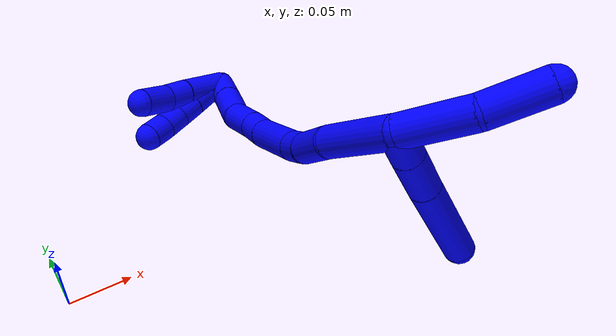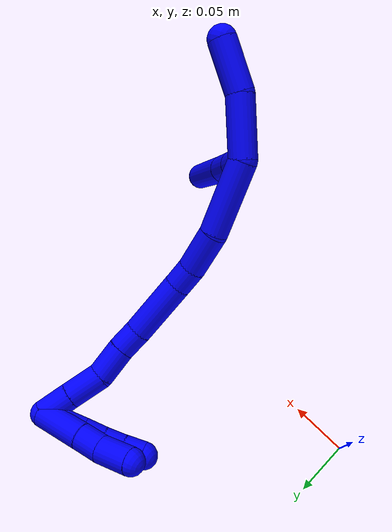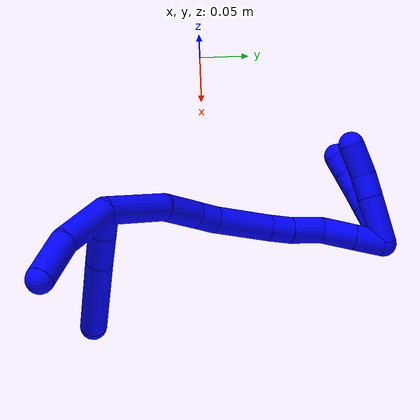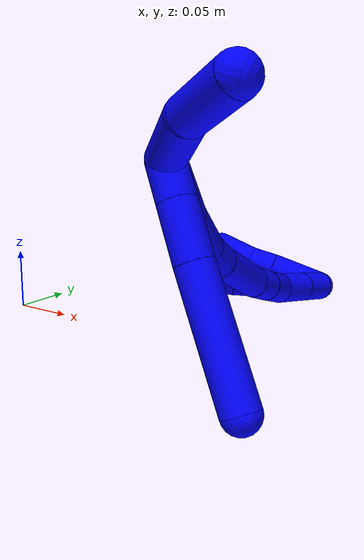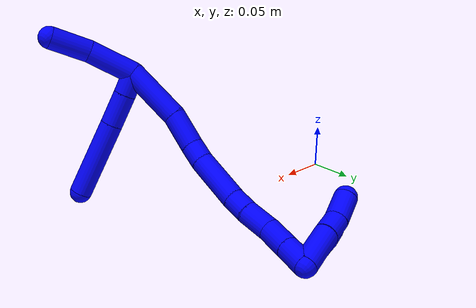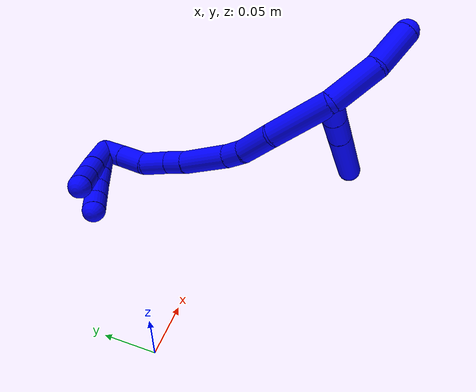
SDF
<sdf version="1.7">
 <world name="default">
  <model name="1">
   <static>0</static>
   <link name="1">
    <collision name="collision-cylinder-e_1_2_8">
     <pose>0.009461 0.002998 0.007987 -0.359085 0.837057 -0.161114</pose>
     <geometry><cylinder><radius>0.0125</radius><length>0.025479</length></cylinder></geometry>
     <surface>
      <friction><ode><mu>1.16</mu><mu2>1.16</mu2><slip1>0</slip1><slip2>0</slip2></ode></friction>
      <contact><ode><kp>1e+06</kp><kd>1</kd><max_vel>0</max_vel><min_depth>0.001</min_depth></ode></contact>
     </surface>
    </collision>
    <visual name="visual-cylinder-e_1_2_8">
     <pose>0.009461 0.002998 0.007987 -0.359085 0.837057 -0.161114</pose>
     <geometry><cylinder><radius>0.0125</radius><length>0.025479</length></cylinder></geometry>
     <material><ambient>0 0 1 1</ambient></material>
    </visual>
    <collision name="collision-cylinder-e_2_8_9">
     <pose>0.032858 0.009986 0.027812 -0.325083 0.839936 -0.146192</pose>
     <geometry><cylinder><radius>0.0125</radius><length>0.037432</length></cylinder></geometry>
     <surface>
      <friction><ode><mu>1.16</mu><mu2>1.16</mu2><slip1>0</slip1><slip2>0</slip2></ode></friction>
      <contact><ode><kp>1e+06</kp><kd>1</kd><max_vel>0</max_vel><min_depth>0.001</min_depth></ode></contact>
     </surface>
    </collision>
    <visual name="visual-cylinder-e_2_8_9">
     <pose>0.032858 0.009986 0.027812 -0.325083 0.839936 -0.146192</pose>
     <geometry><cylinder><radius>0.0125</radius><length>0.037432</length></cylinder></geometry>
     <material><ambient>0 0 1 1</ambient></material>
    </visual>
    <collision name="collision-cylinder-e_3_9_6">
     <pose>0.07847 0.023172 0.06808 -0.312829 0.814579 -0.13586</pose>
     <geometry><cylinder><radius>0.0125</radius><length>0.087089</length></cylinder></geometry>
     <surface>
      <friction><ode><mu>1.16</mu><mu2>1.16</mu2><slip1>0</slip1><slip2>0</slip2></ode></friction>
      <contact><ode><kp>1e+06</kp><kd>1</kd><max_vel>0</max_vel><min_depth>0.001</min_depth></ode></contact>
     </surface>
    </collision>
    <visual name="visual-cylinder-e_3_9_6">
     <pose>0.07847 0.023172 0.06808 -0.312829 0.814579 -0.13586</pose>
     <geometry><cylinder><radius>0.0125</radius><length>0.087089</length></cylinder></geometry>
     <material><ambient>0 0 1 1</ambient></material>
    </visual>
    <collision name="collision-cylinder-e_1_2_10">
     <pose>-0.002473 -0.025199 0.009447 1.21212 -0.091633 -0.063531</pose>
     <geometry><cylinder><radius>0.0125</radius><length>0.05405</length></cylinder></geometry>
     <surface>
      <friction><ode><mu>1.16</mu><mu2>1.16</mu2><slip1>0</slip1><slip2>0</slip2></ode></friction>
      <contact><ode><kp>1e+06</kp><kd>1</kd><max_vel>0</max_vel><min_depth>0.001</min_depth></ode></contact>
     </surface>
    </collision>
    <visual name="visual-cylinder-e_1_2_10">
     <pose>-0.002473 -0.025199 0.009447 1.21212 -0.091633 -0.063531</pose>
     <geometry><cylinder><radius>0.0125</radius><length>0.05405</length></cylinder></geometry>
     <material><ambient>0 0 1 1</ambient></material>
    </visual>
    <collision name="collision-cylinder-e_2_10_5">
     <pose>-0.009434 -0.068726 0.032 0.950011 -0.196637 -0.101366</pose>
     <geometry><cylinder><radius>0.0125</radius><length>0.04595</length></cylinder></geometry>
     <surface>
      <friction><ode><mu>1.16</mu><mu2>1.16</mu2><slip1>0</slip1><slip2>0</slip2></ode></friction>
      <contact><ode><kp>1e+06</kp><kd>1</kd><max_vel>0</max_vel><min_depth>0.001</min_depth></ode></contact>
     </surface>
    </collision>
    <visual name="visual-cylinder-e_2_10_5">
     <pose>-0.009434 -0.068726 0.032 0.950011 -0.196637 -0.101366</pose>
     <geometry><cylinder><radius>0.0125</radius><length>0.04595</length></cylinder></geometry>
     <material><ambient>0 0 1 1</ambient></material>
    </visual>
    <collision name="collision-cylinder-e_1_2_11">
     <pose>0.001984 0.033152 0.003592 -1.46287 0.059428 -0.05334</pose>
     <geometry><cylinder><radius>0.0125</radius><length>0.066809</length></cylinder></geometry>
     <surface>
      <friction><ode><mu>1.16</mu><mu2>1.16</mu2><slip1>0</slip1><slip2>0</slip2></ode></friction>
      <contact><ode><kp>1e+06</kp><kd>1</kd><max_vel>0</max_vel><min_depth>0.001</min_depth></ode></contact>
     </surface>
    </collision>
    <visual name="visual-cylinder-e_1_2_11">
     <pose>0.001984 0.033152 0.003592 -1.46287 0.059428 -0.05334</pose>
     <geometry><cylinder><radius>0.0125</radius><length>0.066809</length></cylinder></geometry>
     <material><ambient>0 0 1 1</ambient></material>
    </visual>
    <collision name="collision-cylinder-e_2_11_12">
     <pose>0.006605 0.084733 0.013474 -1.24188 0.134587 -0.096345</pose>
     <geometry><cylinder><radius>0.0125</radius><length>0.039302</length></cylinder></geometry>
     <surface>
      <friction><ode><mu>1.16</mu><mu2>1.16</mu2><slip1>0</slip1><slip2>0</slip2></ode></friction>
      <contact><ode><kp>1e+06</kp><kd>1</kd><max_vel>0</max_vel><min_depth>0.001</min_depth></ode></contact>
     </surface>
    </collision>
    <visual name="visual-cylinder-e_2_11_12">
     <pose>0.006605 0.084733 0.013474 -1.24188 0.134587 -0.096345</pose>
     <geometry><cylinder><radius>0.0125</radius><length>0.039302</length></cylinder></geometry>
     <material><ambient>0 0 1 1</ambient></material>
    </visual>
    <collision name="collision-cylinder-e_3_12_13">
     <pose>0.008797 0.113216 0.023932 -1.17778 -0.040847 0.027286</pose>
     <geometry><cylinder><radius>0.0125</radius><length>0.021787</length></cylinder></geometry>
     <surface>
      <friction><ode><mu>1.16</mu><mu2>1.16</mu2><slip1>0</slip1><slip2>0</slip2></ode></friction>
      <contact><ode><kp>1e+06</kp><kd>1</kd><max_vel>0</max_vel><min_depth>0.001</min_depth></ode></contact>
     </surface>
    </collision>
    <visual name="visual-cylinder-e_3_12_13">
     <pose>0.008797 0.113216 0.023932 -1.17778 -0.040847 0.027286</pose>
     <geometry><cylinder><radius>0.0125</radius><length>0.021787</length></cylinder></geometry>
     <material><ambient>0 0 1 1</ambient></material>
    </visual>
    <collision name="collision-cylinder-e_4_13_14">
     <pose>0.003241 0.149353 0.037588 -1.22193 -0.182093 0.127709</pose>
     <geometry><cylinder><radius>0.0125</radius><length>0.056441</length></cylinder></geometry>
     <surface>
      <friction><ode><mu>1.16</mu><mu2>1.16</mu2><slip1>0</slip1><slip2>0</slip2></ode></friction>
      <contact><ode><kp>1e+06</kp><kd>1</kd><max_vel>0</max_vel><min_depth>0.001</min_depth></ode></contact>
     </surface>
    </collision>
    <visual name="visual-cylinder-e_4_13_14">
     <pose>0.003241 0.149353 0.037588 -1.22193 -0.182093 0.127709</pose>
     <geometry><cylinder><radius>0.0125</radius><length>0.056441</length></cylinder></geometry>
     <material><ambient>0 0 1 1</ambient></material>
    </visual>
    <collision name="collision-cylinder-e_5_14_15">
     <pose>-0.005418 0.185505 0.050753 -1.22069 -0.319719 0.224597</pose>
     <geometry><cylinder><radius>0.0125</radius><length>0.022585</length></cylinder></geometry>
     <surface>
      <friction><ode><mu>1.16</mu><mu2>1.16</mu2><slip1>0</slip1><slip2>0</slip2></ode></friction>
      <contact><ode><kp>1e+06</kp><kd>1</kd><max_vel>0</max_vel><min_depth>0.001</min_depth></ode></contact>
     </surface>
    </collision>
    <visual name="visual-cylinder-e_5_14_15">
     <pose>-0.005418 0.185505 0.050753 -1.22069 -0.319719 0.224597</pose>
     <geometry><cylinder><radius>0.0125</radius><length>0.022585</length></cylinder></geometry>
     <material><ambient>0 0 1 1</ambient></material>
    </visual>
    <collision name="collision-cylinder-e_6_15_16">
     <pose>-0.014057 0.209987 0.057787 -1.34193 -0.331247 0.263842</pose>
     <geometry><cylinder><radius>0.0125</radius><length>0.031296</length></cylinder></geometry>
     <surface>
      <friction><ode><mu>1.16</mu><mu2>1.16</mu2><slip1>0</slip1><slip2>0</slip2></ode></friction>
      <contact><ode><kp>1e+06</kp><kd>1</kd><max_vel>0</max_vel><min_depth>0.001</min_depth></ode></contact>
     </surface>
    </collision>
    <visual name="visual-cylinder-e_6_15_16">
     <pose>-0.014057 0.209987 0.057787 -1.34193 -0.331247 0.263842</pose>
     <geometry><cylinder><radius>0.0125</radius><length>0.031296</length></cylinder></geometry>
     <material><ambient>0 0 1 1</ambient></material>
    </visual>
    <collision name="collision-cylinder-e_7_16_17">
     <pose>-0.027411 0.236722 0.068458 -1.03515 -0.523144 0.302506</pose>
     <geometry><cylinder><radius>0.0125</radius><length>0.033087</length></cylinder></geometry>
     <surface>
      <friction><ode><mu>1.16</mu><mu2>1.16</mu2><slip1>0</slip1><slip2>0</slip2></ode></friction>
      <contact><ode><kp>1e+06</kp><kd>1</kd><max_vel>0</max_vel><min_depth>0.001</min_depth></ode></contact>
     </surface>
    </collision>
    <visual name="visual-cylinder-e_7_16_17">
     <pose>-0.027411 0.236722 0.068458 -1.03515 -0.523144 0.302506</pose>
     <geometry><cylinder><radius>0.0125</radius><length>0.033087</length></cylinder></geometry>
     <material><ambient>0 0 1 1</ambient></material>
    </visual>
    <collision name="collision-cylinder-e_8_17_1">
     <pose>-0.042773 0.25985 0.081995 -1.04828 -0.517499 0.303658</pose>
     <geometry><cylinder><radius>0.0125</radius><length>0.028693</length></cylinder></geometry>
     <surface>
      <friction><ode><mu>1.16</mu><mu2>1.16</mu2><slip1>0</slip1><slip2>0</slip2></ode></friction>
      <contact><ode><kp>1e+06</kp><kd>1</kd><max_vel>0</max_vel><min_depth>0.001</min_depth></ode></contact>
     </surface>
    </collision>
    <visual name="visual-cylinder-e_8_17_1">
     <pose>-0.042773 0.25985 0.081995 -1.04828 -0.517499 0.303658</pose>
     <geometry><cylinder><radius>0.0125</radius><length>0.028693</length></cylinder></geometry>
     <material><ambient>0 0 1 1</ambient></material>
    </visual>
    <collision name="collision-cylinder-e_1_1_18">
     <pose>-0.049408 0.270123 0.065395 3.11836 0.020259 1.434</pose>
     <geometry><cylinder><radius>0.0125</radius><length>0.045666</length></cylinder></geometry>
     <surface>
      <friction><ode><mu>1.16</mu><mu2>1.16</mu2><slip1>0</slip1><slip2>0</slip2></ode></friction>
      <contact><ode><kp>1e+06</kp><kd>1</kd><max_vel>0</max_vel><min_depth>0.001</min_depth></ode></contact>
     </surface>
    </collision>
    <visual name="visual-cylinder-e_1_1_18">
     <pose>-0.049408 0.270123 0.065395 3.11836 0.020259 1.434</pose>
     <geometry><cylinder><radius>0.0125</radius><length>0.045666</length></cylinder></geometry>
     <material><ambient>0 0 1 1</ambient></material>
    </visual>
    <collision name="collision-cylinder-e_2_18_19">
     <pose>-0.048146 0.269789 0.031224 -3.12429 0.070296 -2.65906</pose>
     <geometry><cylinder><radius>0.0125</radius><length>0.022758</length></cylinder></geometry>
     <surface>
      <friction><ode><mu>1.16</mu><mu2>1.16</mu2><slip1>0</slip1><slip2>0</slip2></ode></friction>
      <contact><ode><kp>1e+06</kp><kd>1</kd><max_vel>0</max_vel><min_depth>0.001</min_depth></ode></contact>
     </surface>
    </collision>
    <visual name="visual-cylinder-e_2_18_19">
     <pose>-0.048146 0.269789 0.031224 -3.12429 0.070296 -2.65906</pose>
     <geometry><cylinder><radius>0.0125</radius><length>0.022758</length></cylinder></geometry>
     <material><ambient>0 0 1 1</ambient></material>
    </visual>
    <collision name="collision-cylinder-e_3_19_4">
     <pose>-0.047459 0.267136 0.004346 2.96008 -0.007106 -0.078049</pose>
     <geometry><cylinder><radius>0.0125</radius><length>0.031576</length></cylinder></geometry>
     <surface>
      <friction><ode><mu>1.16</mu><mu2>1.16</mu2><slip1>0</slip1><slip2>0</slip2></ode></friction>
      <contact><ode><kp>1e+06</kp><kd>1</kd><max_vel>0</max_vel><min_depth>0.001</min_depth></ode></contact>
     </surface>
    </collision>
    <visual name="visual-cylinder-e_3_19_4">
     <pose>-0.047459 0.267136 0.004346 2.96008 -0.007106 -0.078049</pose>
     <geometry><cylinder><radius>0.0125</radius><length>0.031576</length></cylinder></geometry>
     <material><ambient>0 0 1 1</ambient></material>
    </visual>
    <collision name="collision-cylinder-e_1_1_20">
     <pose>-0.047905 0.270444 0.078414 3.12022 0.197852 2.92708</pose>
     <geometry><cylinder><radius>0.0125</radius><length>0.02</length></cylinder></geometry>
     <surface>
      <friction><ode><mu>1.16</mu><mu2>1.16</mu2><slip1>0</slip1><slip2>0</slip2></ode></friction>
      <contact><ode><kp>1e+06</kp><kd>1</kd><max_vel>0</max_vel><min_depth>0.001</min_depth></ode></contact>
     </surface>
    </collision>
    <visual name="visual-cylinder-e_1_1_20">
     <pose>-0.047905 0.270444 0.078414 3.12022 0.197852 2.92708</pose>
     <geometry><cylinder><radius>0.0125</radius><length>0.02</length></cylinder></geometry>
     <material><ambient>0 0 1 1</ambient></material>
    </visual>
    <collision name="collision-cylinder-e_2_20_21">
     <pose>-0.041759 0.271061 0.059565 -3.05053 0.431239 -2.73138</pose>
     <geometry><cylinder><radius>0.0125</radius><length>0.02</length></cylinder></geometry>
     <surface>
      <friction><ode><mu>1.16</mu><mu2>1.16</mu2><slip1>0</slip1><slip2>0</slip2></ode></friction>
      <contact><ode><kp>1e+06</kp><kd>1</kd><max_vel>0</max_vel><min_depth>0.001</min_depth></ode></contact>
     </surface>
    </collision>
    <visual name="visual-cylinder-e_2_20_21">
     <pose>-0.041759 0.271061 0.059565 -3.05053 0.431239 -2.73138</pose>
     <geometry><cylinder><radius>0.0125</radius><length>0.02</length></cylinder></geometry>
     <material><ambient>0 0 1 1</ambient></material>
    </visual>
    <collision name="collision-cylinder-e_3_21_22">
     <pose>-0.033516 0.272831 0.04143 -3.03809 0.418469 -2.66306</pose>
     <geometry><cylinder><radius>0.0125</radius><length>0.02</length></cylinder></geometry>
     <surface>
      <friction><ode><mu>1.16</mu><mu2>1.16</mu2><slip1>0</slip1><slip2>0</slip2></ode></friction>
      <contact><ode><kp>1e+06</kp><kd>1</kd><max_vel>0</max_vel><min_depth>0.001</min_depth></ode></contact>
     </surface>
    </collision>
    <visual name="visual-cylinder-e_3_21_22">
     <pose>-0.033516 0.272831 0.04143 -3.03809 0.418469 -2.66306</pose>
     <geometry><cylinder><radius>0.0125</radius><length>0.02</length></cylinder></geometry>
     <material><ambient>0 0 1 1</ambient></material>
    </visual>
    <collision name="collision-cylinder-e_4_22_23">
     <pose>-0.025686 0.273908 0.023079 -3.12721 0.386149 -3.06804</pose>
     <geometry><cylinder><radius>0.0125</radius><length>0.02</length></cylinder></geometry>
     <surface>
      <friction><ode><mu>1.16</mu><mu2>1.16</mu2><slip1>0</slip1><slip2>0</slip2></ode></friction>
      <contact><ode><kp>1e+06</kp><kd>1</kd><max_vel>0</max_vel><min_depth>0.001</min_depth></ode></contact>
     </surface>
    </collision>
    <visual name="visual-cylinder-e_4_22_23">
     <pose>-0.025686 0.273908 0.023079 -3.12721 0.386149 -3.06804</pose>
     <geometry><cylinder><radius>0.0125</radius><length>0.02</length></cylinder></geometry>
     <material><ambient>0 0 1 1</ambient></material>
    </visual>
    <collision name="collision-cylinder-e_5_23_3">
     <pose>-0.019098 0.273119 0.004267 3.04527 0.28609 2.4957</pose>
     <geometry><cylinder><radius>0.0125</radius><length>0.02</length></cylinder></geometry>
     <surface>
      <friction><ode><mu>1.16</mu><mu2>1.16</mu2><slip1>0</slip1><slip2>0</slip2></ode></friction>
      <contact><ode><kp>1e+06</kp><kd>1</kd><max_vel>0</max_vel><min_depth>0.001</min_depth></ode></contact>
     </surface>
    </collision>
    <visual name="visual-cylinder-e_5_23_3">
     <pose>-0.019098 0.273119 0.004267 3.04527 0.28609 2.4957</pose>
     <geometry><cylinder><radius>0.0125</radius><length>0.02</length></cylinder></geometry>
     <material><ambient>0 0 1 1</ambient></material>
    </visual>
    <collision name="collision-sphere-3">
     <pose>-0.016276 0.272196 -0.005282 0 -0 0</pose>
     <geometry><sphere><radius>0.0125</radius></sphere></geometry>
     <surface>
      <friction><ode><mu>1.16</mu><mu2>1.16</mu2><slip1>0</slip1><slip2>0</slip2></ode></friction>
      <contact><ode><kp>1e+06</kp><kd>1</kd><max_vel>0</max_vel><min_depth>0.001</min_depth></ode></contact>
     </surface>
    </collision>
    <visual name="visual-sphere-3">
     <pose>-0.016276 0.272196 -0.005282 0 -0 0</pose>
     <geometry><sphere><radius>0.0125</radius></sphere></geometry>
     <material><ambient>0 0 1 1</ambient></material>
    </visual>
    <collision name="collision-sphere-23">
     <pose>-0.02192 0.274042 0.013816 0 -0 0</pose>
     <geometry><sphere><radius>0.0125</radius></sphere></geometry>
     <surface>
      <friction><ode><mu>1.16</mu><mu2>1.16</mu2><slip1>0</slip1><slip2>0</slip2></ode></friction>
      <contact><ode><kp>1e+06</kp><kd>1</kd><max_vel>0</max_vel><min_depth>0.001</min_depth></ode></contact>
     </surface>
    </collision>
    <visual name="visual-sphere-23">
     <pose>-0.02192 0.274042 0.013816 0 -0 0</pose>
     <geometry><sphere><radius>0.0125</radius></sphere></geometry>
     <material><ambient>0 0 1 1</ambient></material>
    </visual>
    <collision name="collision-sphere-22">
     <pose>-0.029452 0.273775 0.032342 0 -0 0</pose>
     <geometry><sphere><radius>0.0125</radius></sphere></geometry>
     <surface>
      <friction><ode><mu>1.16</mu><mu2>1.16</mu2><slip1>0</slip1><slip2>0</slip2></ode></friction>
      <contact><ode><kp>1e+06</kp><kd>1</kd><max_vel>0</max_vel><min_depth>0.001</min_depth></ode></contact>
     </surface>
    </collision>
    <visual name="visual-sphere-22">
     <pose>-0.029452 0.273775 0.032342 0 -0 0</pose>
     <geometry><sphere><radius>0.0125</radius></sphere></geometry>
     <material><ambient>0 0 1 1</ambient></material>
    </visual>
    <collision name="collision-sphere-21">
     <pose>-0.037579 0.271887 0.050518 0 -0 0</pose>
     <geometry><sphere><radius>0.0125</radius></sphere></geometry>
     <surface>
      <friction><ode><mu>1.16</mu><mu2>1.16</mu2><slip1>0</slip1><slip2>0</slip2></ode></friction>
      <contact><ode><kp>1e+06</kp><kd>1</kd><max_vel>0</max_vel><min_depth>0.001</min_depth></ode></contact>
     </surface>
    </collision>
    <visual name="visual-sphere-21">
     <pose>-0.037579 0.271887 0.050518 0 -0 0</pose>
     <geometry><sphere><radius>0.0125</radius></sphere></geometry>
     <material><ambient>0 0 1 1</ambient></material>
    </visual>
    <collision name="collision-sphere-20">
     <pose>-0.045939 0.270235 0.068612 0 -0 0</pose>
     <geometry><sphere><radius>0.0125</radius></sphere></geometry>
     <surface>
      <friction><ode><mu>1.16</mu><mu2>1.16</mu2><slip1>0</slip1><slip2>0</slip2></ode></friction>
      <contact><ode><kp>1e+06</kp><kd>1</kd><max_vel>0</max_vel><min_depth>0.001</min_depth></ode></contact>
     </surface>
    </collision>
    <visual name="visual-sphere-20">
     <pose>-0.045939 0.270235 0.068612 0 -0 0</pose>
     <geometry><sphere><radius>0.0125</radius></sphere></geometry>
     <material><ambient>0 0 1 1</ambient></material>
    </visual>
    <collision name="collision-sphere-4">
     <pose>-0.047571 0.264286 -0.011182 0 -0 0</pose>
     <geometry><sphere><radius>0.0125</radius></sphere></geometry>
     <surface>
      <friction><ode><mu>1.16</mu><mu2>1.16</mu2><slip1>0</slip1><slip2>0</slip2></ode></friction>
      <contact><ode><kp>1e+06</kp><kd>1</kd><max_vel>0</max_vel><min_depth>0.001</min_depth></ode></contact>
     </surface>
    </collision>
    <visual name="visual-sphere-4">
     <pose>-0.047571 0.264286 -0.011182 0 -0 0</pose>
     <geometry><sphere><radius>0.0125</radius></sphere></geometry>
     <material><ambient>0 0 1 1</ambient></material>
    </visual>
    <collision name="collision-sphere-5">
     <pose>-0.013923 -0.087054 0.045107 0 -0 0</pose>
     <geometry><sphere><radius>0.0125</radius></sphere></geometry>
     <surface>
      <friction><ode><mu>1.16</mu><mu2>1.16</mu2><slip1>0</slip1><slip2>0</slip2></ode></friction>
      <contact><ode><kp>1e+06</kp><kd>1</kd><max_vel>0</max_vel><min_depth>0.001</min_depth></ode></contact>
     </surface>
    </collision>
    <visual name="visual-sphere-5">
     <pose>-0.013923 -0.087054 0.045107 0 -0 0</pose>
     <geometry><sphere><radius>0.0125</radius></sphere></geometry>
     <material><ambient>0 0 1 1</ambient></material>
    </visual>
    <collision name="collision-sphere-10">
     <pose>-0.004946 -0.050398 0.018894 0 -0 0</pose>
     <geometry><sphere><radius>0.0125</radius></sphere></geometry>
     <surface>
      <friction><ode><mu>1.16</mu><mu2>1.16</mu2><slip1>0</slip1><slip2>0</slip2></ode></friction>
      <contact><ode><kp>1e+06</kp><kd>1</kd><max_vel>0</max_vel><min_depth>0.001</min_depth></ode></contact>
     </surface>
    </collision>
    <visual name="visual-sphere-10">
     <pose>-0.004946 -0.050398 0.018894 0 -0 0</pose>
     <geometry><sphere><radius>0.0125</radius></sphere></geometry>
     <material><ambient>0 0 1 1</ambient></material>
    </visual>
    <collision name="collision-sphere-6">
     <pose>0.110146 0.032367 0.096509 0 -0 0</pose>
     <geometry><sphere><radius>0.0125</radius></sphere></geometry>
     <surface>
      <friction><ode><mu>1.16</mu><mu2>1.16</mu2><slip1>0</slip1><slip2>0</slip2></ode></friction>
      <contact><ode><kp>1e+06</kp><kd>1</kd><max_vel>0</max_vel><min_depth>0.001</min_depth></ode></contact>
     </surface>
    </collision>
    <visual name="visual-sphere-6">
     <pose>0.110146 0.032367 0.096509 0 -0 0</pose>
     <geometry><sphere><radius>0.0125</radius></sphere></geometry>
     <material><ambient>0 0 1 1</ambient></material>
    </visual>
    <collision name="collision-sphere-9">
     <pose>0.046794 0.013976 0.039651 0 -0 0</pose>
     <geometry><sphere><radius>0.0125</radius></sphere></geometry>
     <surface>
      <friction><ode><mu>1.16</mu><mu2>1.16</mu2><slip1>0</slip1><slip2>0</slip2></ode></friction>
      <contact><ode><kp>1e+06</kp><kd>1</kd><max_vel>0</max_vel><min_depth>0.001</min_depth></ode></contact>
     </surface>
    </collision>
    <visual name="visual-sphere-9">
     <pose>0.046794 0.013976 0.039651 0 -0 0</pose>
     <geometry><sphere><radius>0.0125</radius></sphere></geometry>
     <material><ambient>0 0 1 1</ambient></material>
    </visual>
    <collision name="collision-sphere-2">
     <geometry><sphere><radius>0.0125</radius></sphere></geometry>
     <surface>
      <friction><ode><mu>1.16</mu><mu2>1.16</mu2><slip1>0</slip1><slip2>0</slip2></ode></friction>
      <contact><ode><kp>1e+06</kp><kd>1</kd><max_vel>0</max_vel><min_depth>0.001</min_depth></ode></contact>
     </surface>
    </collision>
    <visual name="visual-sphere-2">
     <geometry><sphere><radius>0.0125</radius></sphere></geometry>
     <material><ambient>0 0 1 1</ambient></material>
    </visual>
    <collision name="collision-sphere-19">
     <pose>-0.047347 0.269986 0.019875 0 -0 0</pose>
     <geometry><sphere><radius>0.0125</radius></sphere></geometry>
     <surface>
      <friction><ode><mu>1.16</mu><mu2>1.16</mu2><slip1>0</slip1><slip2>0</slip2></ode></friction>
      <contact><ode><kp>1e+06</kp><kd>1</kd><max_vel>0</max_vel><min_depth>0.001</min_depth></ode></contact>
     </surface>
    </collision>
    <visual name="visual-sphere-19">
     <pose>-0.047347 0.269986 0.019875 0 -0 0</pose>
     <geometry><sphere><radius>0.0125</radius></sphere></geometry>
     <material><ambient>0 0 1 1</ambient></material>
    </visual>
    <collision name="collision-sphere-8">
     <pose>0.018923 0.005996 0.015974 0 -0 0</pose>
     <geometry><sphere><radius>0.0125</radius></sphere></geometry>
     <surface>
      <friction><ode><mu>1.16</mu><mu2>1.16</mu2><slip1>0</slip1><slip2>0</slip2></ode></friction>
      <contact><ode><kp>1e+06</kp><kd>1</kd><max_vel>0</max_vel><min_depth>0.001</min_depth></ode></contact>
     </surface>
    </collision>
    <visual name="visual-sphere-8">
     <pose>0.018923 0.005996 0.015974 0 -0 0</pose>
     <geometry><sphere><radius>0.0125</radius></sphere></geometry>
     <material><ambient>0 0 1 1</ambient></material>
    </visual>
    <collision name="collision-sphere-11">
     <pose>0.003968 0.066303 0.007184 0 -0 0</pose>
     <geometry><sphere><radius>0.0125</radius></sphere></geometry>
     <surface>
      <friction><ode><mu>1.16</mu><mu2>1.16</mu2><slip1>0</slip1><slip2>0</slip2></ode></friction>
      <contact><ode><kp>1e+06</kp><kd>1</kd><max_vel>0</max_vel><min_depth>0.001</min_depth></ode></contact>
     </surface>
    </collision>
    <visual name="visual-sphere-11">
     <pose>0.003968 0.066303 0.007184 0 -0 0</pose>
     <geometry><sphere><radius>0.0125</radius></sphere></geometry>
     <material><ambient>0 0 1 1</ambient></material>
    </visual>
    <collision name="collision-sphere-12">
     <pose>0.009242 0.103162 0.019764 0 -0 0</pose>
     <geometry><sphere><radius>0.0125</radius></sphere></geometry>
     <surface>
      <friction><ode><mu>1.16</mu><mu2>1.16</mu2><slip1>0</slip1><slip2>0</slip2></ode></friction>
      <contact><ode><kp>1e+06</kp><kd>1</kd><max_vel>0</max_vel><min_depth>0.001</min_depth></ode></contact>
     </surface>
    </collision>
    <visual name="visual-sphere-12">
     <pose>0.009242 0.103162 0.019764 0 -0 0</pose>
     <geometry><sphere><radius>0.0125</radius></sphere></geometry>
     <material><ambient>0 0 1 1</ambient></material>
    </visual>
    <collision name="collision-sphere-13">
     <pose>0.008352 0.123271 0.028101 0 -0 0</pose>
     <geometry><sphere><radius>0.0125</radius></sphere></geometry>
     <surface>
      <friction><ode><mu>1.16</mu><mu2>1.16</mu2><slip1>0</slip1><slip2>0</slip2></ode></friction>
      <contact><ode><kp>1e+06</kp><kd>1</kd><max_vel>0</max_vel><min_depth>0.001</min_depth></ode></contact>
     </surface>
    </collision>
    <visual name="visual-sphere-13">
     <pose>0.008352 0.123271 0.028101 0 -0 0</pose>
     <geometry><sphere><radius>0.0125</radius></sphere></geometry>
     <material><ambient>0 0 1 1</ambient></material>
    </visual>
    <collision name="collision-sphere-14">
     <pose>-0.001869 0.175435 0.047075 0 -0 0</pose>
     <geometry><sphere><radius>0.0125</radius></sphere></geometry>
     <surface>
      <friction><ode><mu>1.16</mu><mu2>1.16</mu2><slip1>0</slip1><slip2>0</slip2></ode></friction>
      <contact><ode><kp>1e+06</kp><kd>1</kd><max_vel>0</max_vel><min_depth>0.001</min_depth></ode></contact>
     </surface>
    </collision>
    <visual name="visual-sphere-14">
     <pose>-0.001869 0.175435 0.047075 0 -0 0</pose>
     <geometry><sphere><radius>0.0125</radius></sphere></geometry>
     <material><ambient>0 0 1 1</ambient></material>
    </visual>
    <collision name="collision-sphere-15">
     <pose>-0.008968 0.195575 0.05443 0 -0 0</pose>
     <geometry><sphere><radius>0.0125</radius></sphere></geometry>
     <surface>
      <friction><ode><mu>1.16</mu><mu2>1.16</mu2><slip1>0</slip1><slip2>0</slip2></ode></friction>
      <contact><ode><kp>1e+06</kp><kd>1</kd><max_vel>0</max_vel><min_depth>0.001</min_depth></ode></contact>
     </surface>
    </collision>
    <visual name="visual-sphere-15">
     <pose>-0.008968 0.195575 0.05443 0 -0 0</pose>
     <geometry><sphere><radius>0.0125</radius></sphere></geometry>
     <material><ambient>0 0 1 1</ambient></material>
    </visual>
    <collision name="collision-sphere-16">
     <pose>-0.019146 0.224398 0.061144 0 -0 0</pose>
     <geometry><sphere><radius>0.0125</radius></sphere></geometry>
     <surface>
      <friction><ode><mu>1.16</mu><mu2>1.16</mu2><slip1>0</slip1><slip2>0</slip2></ode></friction>
      <contact><ode><kp>1e+06</kp><kd>1</kd><max_vel>0</max_vel><min_depth>0.001</min_depth></ode></contact>
     </surface>
    </collision>
    <visual name="visual-sphere-16">
     <pose>-0.019146 0.224398 0.061144 0 -0 0</pose>
     <geometry><sphere><radius>0.0125</radius></sphere></geometry>
     <material><ambient>0 0 1 1</ambient></material>
    </visual>
    <collision name="collision-sphere-17">
     <pose>-0.035676 0.249045 0.075773 0 -0 0</pose>
     <geometry><sphere><radius>0.0125</radius></sphere></geometry>
     <surface>
      <friction><ode><mu>1.16</mu><mu2>1.16</mu2><slip1>0</slip1><slip2>0</slip2></ode></friction>
      <contact><ode><kp>1e+06</kp><kd>1</kd><max_vel>0</max_vel><min_depth>0.001</min_depth></ode></contact>
     </surface>
    </collision>
    <visual name="visual-sphere-17">
     <pose>-0.035676 0.249045 0.075773 0 -0 0</pose>
     <geometry><sphere><radius>0.0125</radius></sphere></geometry>
     <material><ambient>0 0 1 1</ambient></material>
    </visual>
    <collision name="collision-sphere-1">
     <pose>-0.049871 0.270654 0.088217 0 -0 0</pose>
     <geometry><sphere><radius>0.0125</radius></sphere></geometry>
     <surface>
      <friction><ode><mu>1.16</mu><mu2>1.16</mu2><slip1>0</slip1><slip2>0</slip2></ode></friction>
      <contact><ode><kp>1e+06</kp><kd>1</kd><max_vel>0</max_vel><min_depth>0.001</min_depth></ode></contact>
     </surface>
    </collision>
    <visual name="visual-sphere-1">
     <pose>-0.049871 0.270654 0.088217 0 -0 0</pose>
     <geometry><sphere><radius>0.0125</radius></sphere></geometry>
     <material><ambient>0 0 1 1</ambient></material>
    </visual>
    <collision name="collision-sphere-18">
     <pose>-0.048946 0.269593 0.042573 0 -0 0</pose>
     <geometry><sphere><radius>0.0125</radius></sphere></geometry>
     <surface>
      <friction><ode><mu>1.16</mu><mu2>1.16</mu2><slip1>0</slip1><slip2>0</slip2></ode></friction>
      <contact><ode><kp>1e+06</kp><kd>1</kd><max_vel>0</max_vel><min_depth>0.001</min_depth></ode></contact>
     </surface>
    </collision>
    <visual name="visual-sphere-18">
     <pose>-0.048946 0.269593 0.042573 0 -0 0</pose>
     <geometry><sphere><radius>0.0125</radius></sphere></geometry>
     <material><ambient>0 0 1 1</ambient></material>
    </visual>
    <inertial>
     <pose>-0.003202 0.126102 0.037478 0 -0 0</pose>
     <mass>0.75</mass>
     <inertia>
      <ixx>0.000141</ixx>
      <ixy>0</ixy>
      <ixz>0</ixz>
      <iyy>0.000118</iyy>
      <iyz>0</iyz>
      <izz>-9.2e-05</izz>
     </inertia>
    </inertial>
   </link>
   <pose>0.218277 -0.087832 0.14514 -2.09187 0.905833 -1.77822</pose>
  </model>
 </world>
</sdf>
